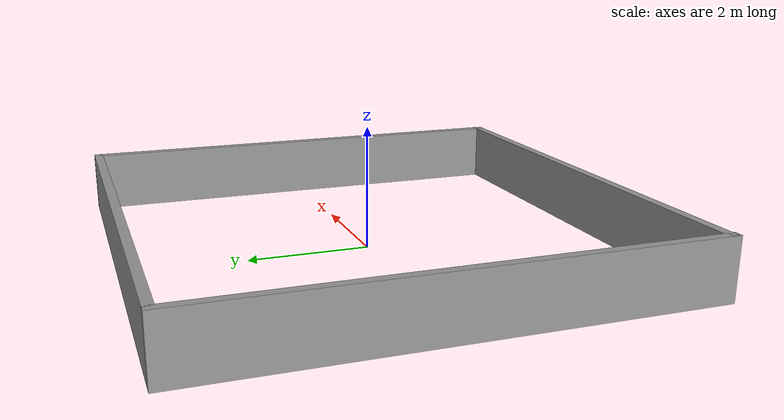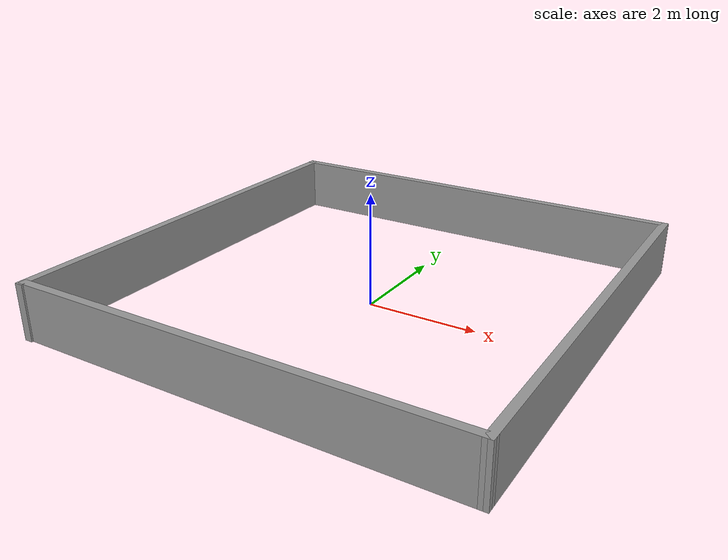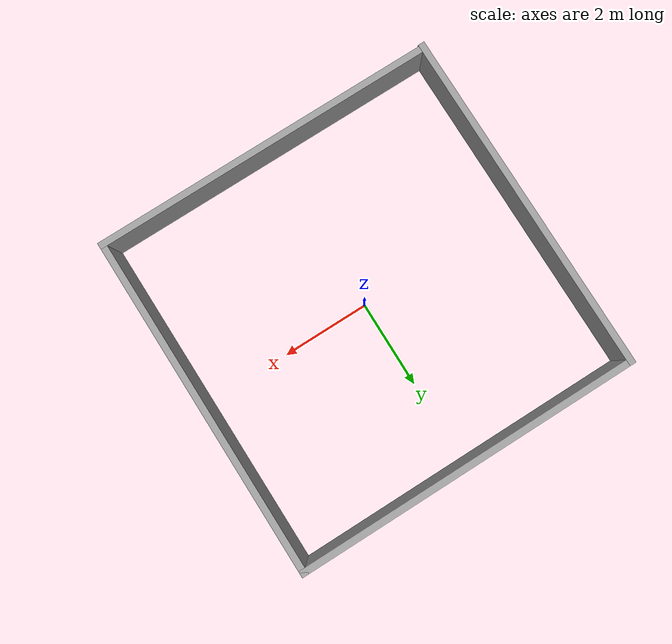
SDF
<?xml version='1.0'?>
<sdf version='1.6'>
  <model name='room_8'>
    <pose frame=''>0 0 0 0 -0 0</pose>
    <link name='Wall_1'>
      <collision name='Wall_1_Collision'>
        <geometry>
          <box>
            <size>7.96947 0.15 1</size>
          </box>
        </geometry>
        <pose frame=''>0 0 0.5 0 -0 0</pose>
      </collision>
      <visual name='Wall_1_Visual'>
        <pose frame=''>0 0 0.5 0 -0 0</pose>
        <geometry>
          <box>
            <size>7.96947 0.15 1</size>
          </box>
        </geometry>
        <material>
          <script>
            <uri>file://media/materials/scripts/gazebo.material</uri>
            <name>Gazebo/Grey</name>
          </script>
          <ambient>1 1 1 1</ambient>
        </material>
        <meta>
          <layer>0</layer>
        </meta>
      </visual>
      <pose frame=''>3.92506 0.015354 0 0 -0 1.57471</pose>
    </link>
    <link name='Wall_3'>
      <collision name='Wall_3_Collision'>
        <geometry>
          <box>
            <size>8 0.15 1</size>
          </box>
        </geometry>
        <pose frame=''>0 0 0.5 0 -0 0</pose>
      </collision>
      <visual name='Wall_3_Visual'>
        <pose frame=''>0 0 0.5 0 -0 0</pose>
        <geometry>
          <box>
            <size>8 0.15 1</size>
          </box>
        </geometry>
        <material>
          <script>
            <uri>file://media/materials/scripts/gazebo.material</uri>
            <name>Gazebo/Grey</name>
          </script>
          <ambient>1 1 1 1</ambient>
        </material>
        <meta>
          <layer>0</layer>
        </meta>
      </visual>
      <pose frame=''>-0.015441 3.92485 0 0 -0 -3.14154</pose>
    </link>
    <link name='Wall_5'>
      <collision name='Wall_5_Collision'>
        <geometry>
          <box>
            <size>8 0.15 1</size>
          </box>
        </geometry>
        <pose frame=''>0 0 0.5 0 -0 0</pose>
      </collision>
      <visual name='Wall_5_Visual'>
        <pose frame=''>0 0 0.5 0 -0 0</pose>
        <geometry>
          <box>
            <size>8 0.15 1</size>
          </box>
        </geometry>
        <material>
          <script>
            <uri>file://media/materials/scripts/gazebo.material</uri>
            <name>Gazebo/Grey</name>
          </script>
          <ambient>1 1 1 1</ambient>
        </material>
        <meta>
          <layer>0</layer>
        </meta>
      </visual>
      <pose frame=''>0.015354 -3.89435 0 0 -0 3.14159</pose>
    </link>
    <link name='Wall_7'>
      <collision name='Wall_7_Collision'>
        <geometry>
          <box>
            <size>8 0.15 1</size>
          </box>
        </geometry>
        <pose frame=''>0 0 0.5 0 -0 0</pose>
      </collision>
      <visual name='Wall_7_Visual'>
        <pose frame=''>0 0 0.5 0 -0 0</pose>
        <geometry>
          <box>
            <size>8 0.15 1</size>
          </box>
        </geometry>
        <material>
          <script>
            <uri>file://media/materials/scripts/gazebo.material</uri>
            <name>Gazebo/Grey</name>
          </script>
          <ambient>1 1 1 1</ambient>
        </material>
        <meta>
          <layer>0</layer>
        </meta>
      </visual>
      <pose frame=''>-3.94065 -0.000351 0 0 -0 -1.5708</pose>
    </link>
    <static>1</static>
  </model>
</sdf>
